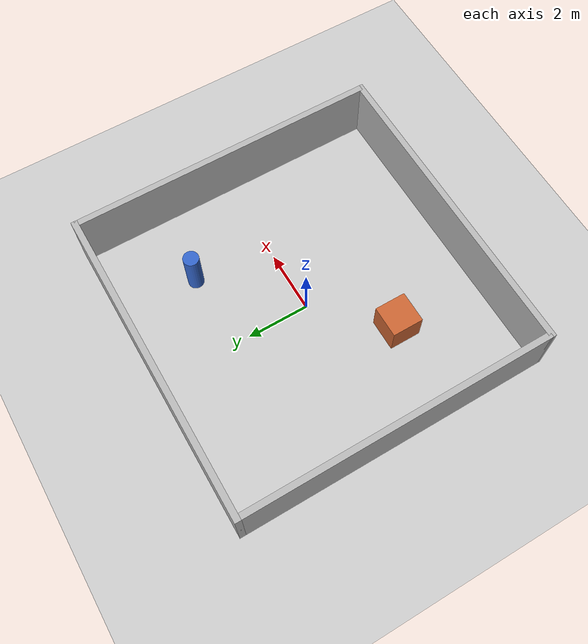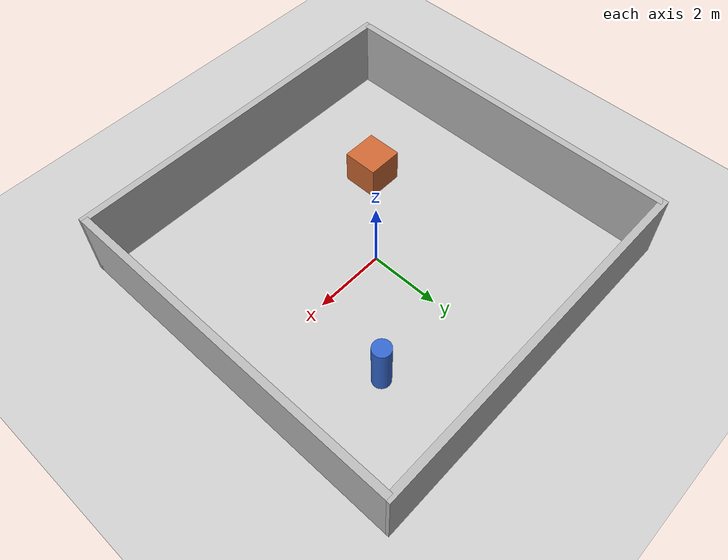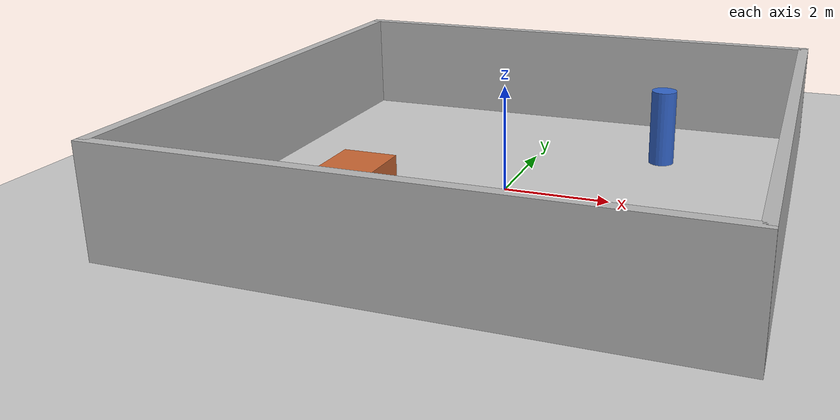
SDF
<?xml version="1.0" ?>
<sdf version="1.8">
  <world name="simple_indoor">
    <physics name="1ms" type="ignored">
      <max_step_size>0.001</max_step_size>
      <real_time_factor>1.0</real_time_factor>
    </physics>
    <plugin filename="libignition-gazebo-physics-system.so" name="ignition::gazebo::systems::Physics"/>
    <plugin filename="libignition-gazebo-scene-broadcaster-system.so" name="ignition::gazebo::systems::SceneBroadcaster"/>
    <plugin filename="libignition-gazebo-user-commands-system.so" name="ignition::gazebo::systems::UserCommands"/>
    <plugin filename="libignition-gazebo-sensors-system.so" name="ignition::gazebo::systems::Sensors"><render_engine>ogre</render_engine></plugin>
    <plugin filename="libignition-gazebo-imu-system.so" name="ignition::gazebo::systems::Imu"/>

    <light type="directional" name="sun">
      <cast_shadows>true</cast_shadows>
      <pose>0 0 10 0 0 0</pose>
      <diffuse>0.8 0.8 0.8 1</diffuse>
      <specular>0.2 0.2 0.2 1</specular>
      <direction>-0.5 0.1 -0.9</direction>
    </light>
    <model name="ground_plane">
      <static>true</static>
      <link name="link">
        <collision name="c"><geometry><plane><normal>0 0 1</normal><size>30 30</size></plane></geometry></collision>
        <visual name="v"><geometry><plane><normal>0 0 1</normal><size>30 30</size></plane></geometry>
          <material><ambient>0.8 0.8 0.8 1</ambient><diffuse>0.8 0.8 0.8 1</diffuse></material>
        </visual>
      </link>
    </model>
    <!-- Room Walls (10m x 10m) -->
    <model name="wall_n"><static>true</static><pose>0 5 1 0 0 0</pose><link name="l"><collision name="c"><geometry><box><size>10.2 0.2 2</size></box></geometry></collision><visual name="v"><geometry><box><size>10.2 0.2 2</size></box></geometry></visual></link></model>
    <model name="wall_s"><static>true</static><pose>0 -5 1 0 0 0</pose><link name="l"><collision name="c"><geometry><box><size>10.2 0.2 2</size></box></geometry></collision><visual name="v"><geometry><box><size>10.2 0.2 2</size></box></geometry></visual></link></model>
    <model name="wall_e"><static>true</static><pose>5 0 1 0 0 0</pose><link name="l"><collision name="c"><geometry><box><size>0.2 10.0 2</size></box></geometry></collision><visual name="v"><geometry><box><size>0.2 10.0 2</size></box></geometry></visual></link></model>
    <model name="wall_w"><static>true</static><pose>-5 0 1 0 0 0</pose><link name="l"><collision name="c"><geometry><box><size>0.2 10.0 2</size></box></geometry></collision><visual name="v"><geometry><box><size>0.2 10.0 2</size></box></geometry></visual></link></model>
    <!-- Landmarks -->
    <model name="pillar_1"><static>true</static><pose>2.5 2.5 0.75 0 0 0</pose><link name="l"><collision name="c"><geometry><cylinder><radius>0.25</radius><length>1.5</length></cylinder></geometry></collision><visual name="v"><geometry><cylinder><radius>0.25</radius><length>1.5</length></cylinder></geometry><material><ambient>0.2 0.4 0.8 1</ambient><diffuse>0.2 0.4 0.8 1</diffuse></material></visual></link></model>
    <model name="crate_1"><static>true</static><pose>-2.0 -2.0 0.5 0 0 0</pose><link name="l"><collision name="c"><geometry><box><size>1.0 1.0 1.0</size></box></geometry></collision><visual name="v"><geometry><box><size>1.0 1.0 1.0</size></box></geometry><material><ambient>0.8 0.4 0.2 1</ambient><diffuse>0.8 0.4 0.2 1</diffuse></material></visual></link></model>
  </world>
</sdf>
